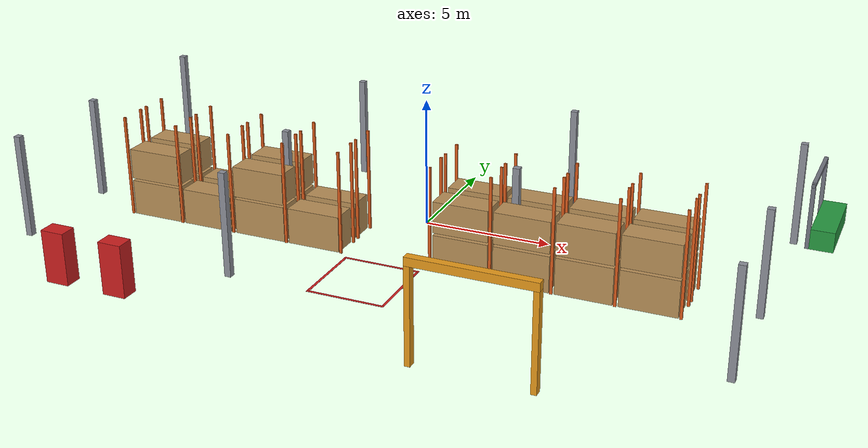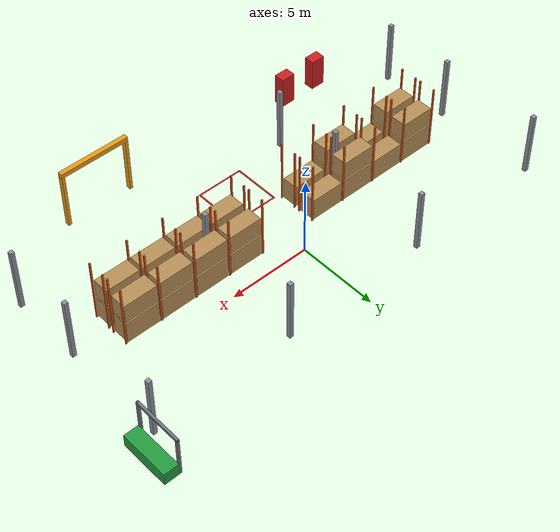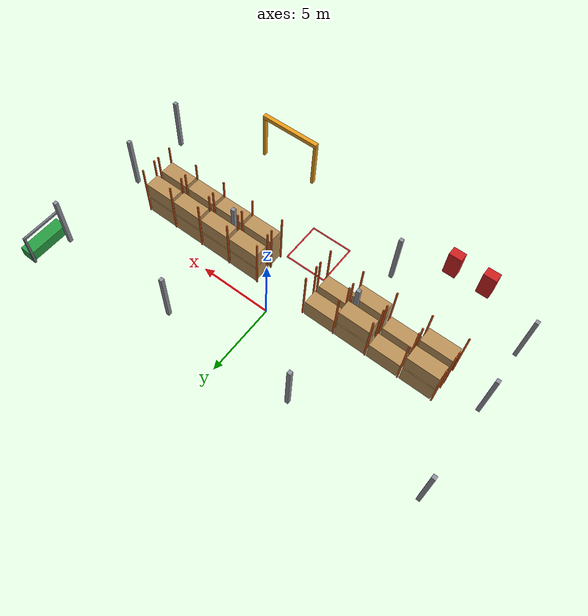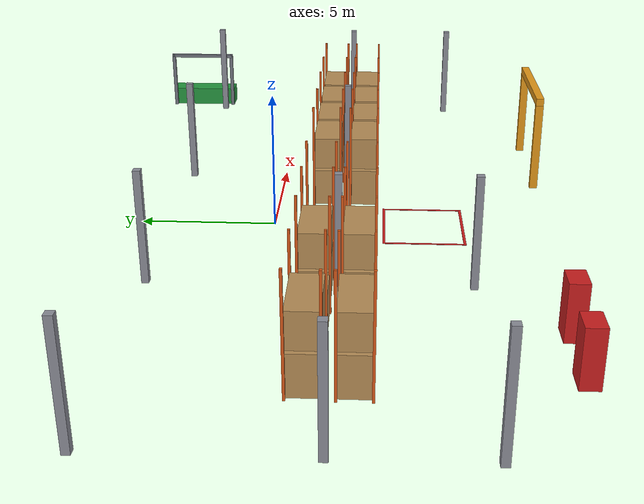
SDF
<sdf version="1.8">
 <world name="warehouse">
  <model name="DoorGap">
   <static>true</static>
   <pose>6.00 -10.10 0 0 0 0</pose>
   <link name="link">
    <collision name="post_west_collision">
     <pose>-2.100 0.000 1.750 0 0 0</pose>
     <geometry><box><size>0.200 0.300 3.500</size></box></geometry>
    </collision>
    <visual name="post_west_visual">
     <pose>-2.100 0.000 1.750 0 0 0</pose>
     <geometry><box><size>0.200 0.300 3.500</size></box></geometry>
     <material><ambient>0.90 0.60 0.10 1</ambient><diffuse>0.90 0.60 0.10 1</diffuse></material>
    </visual>
    <collision name="post_east_collision">
     <pose>2.100 0.000 1.750 0 0 0</pose>
     <geometry><box><size>0.200 0.300 3.500</size></box></geometry>
    </collision>
    <visual name="post_east_visual">
     <pose>2.100 0.000 1.750 0 0 0</pose>
     <geometry><box><size>0.200 0.300 3.500</size></box></geometry>
     <material><ambient>0.90 0.60 0.10 1</ambient><diffuse>0.90 0.60 0.10 1</diffuse></material>
    </visual>
    <collision name="lintel_collision">
     <pose>0.000 0.000 3.650 0 0 0</pose>
     <geometry><box><size>4.400 0.300 0.300</size></box></geometry>
    </collision>
    <visual name="lintel_visual">
     <pose>0.000 0.000 3.650 0 0 0</pose>
     <geometry><box><size>4.400 0.300 0.300</size></box></geometry>
     <material><ambient>0.90 0.60 0.10 1</ambient><diffuse>0.90 0.60 0.10 1</diffuse></material>
    </visual>
   </link>
  </model>
  <model name="RackRowC_West">
   <static>true</static>
   <link name="link">
    <collision name="cn_frame0_front_collision">
     <pose>-11.000 -1.340 2.000 0 0 0</pose>
     <geometry><box><size>0.100 0.080 4.000</size></box></geometry>
    </collision>
    <visual name="cn_frame0_front_visual">
     <pose>-11.000 -1.340 2.000 0 0 0</pose>
     <geometry><box><size>0.100 0.080 4.000</size></box></geometry>
     <material><ambient>0.85 0.35 0.10 1</ambient><diffuse>0.85 0.35 0.10 1</diffuse></material>
    </visual>
    <collision name="cn_frame0_rear_collision">
     <pose>-11.000 -2.360 2.000 0 0 0</pose>
     <geometry><box><size>0.100 0.080 4.000</size></box></geometry>
    </collision>
    <visual name="cn_frame0_rear_visual">
     <pose>-11.000 -2.360 2.000 0 0 0</pose>
     <geometry><box><size>0.100 0.080 4.000</size></box></geometry>
     <material><ambient>0.85 0.35 0.10 1</ambient><diffuse>0.85 0.35 0.10 1</diffuse></material>
    </visual>
    <collision name="cn_frame1_front_collision">
     <pose>-8.700 -1.340 2.000 0 0 0</pose>
     <geometry><box><size>0.100 0.080 4.000</size></box></geometry>
    </collision>
    <visual name="cn_frame1_front_visual">
     <pose>-8.700 -1.340 2.000 0 0 0</pose>
     <geometry><box><size>0.100 0.080 4.000</size></box></geometry>
     <material><ambient>0.85 0.35 0.10 1</ambient><diffuse>0.85 0.35 0.10 1</diffuse></material>
    </visual>
    <collision name="cn_frame1_rear_collision">
     <pose>-8.700 -2.360 2.000 0 0 0</pose>
     <geometry><box><size>0.100 0.080 4.000</size></box></geometry>
    </collision>
    <visual name="cn_frame1_rear_visual">
     <pose>-8.700 -2.360 2.000 0 0 0</pose>
     <geometry><box><size>0.100 0.080 4.000</size></box></geometry>
     <material><ambient>0.85 0.35 0.10 1</ambient><diffuse>0.85 0.35 0.10 1</diffuse></material>
    </visual>
    <collision name="cn_frame2_front_collision">
     <pose>-6.400 -1.340 2.000 0 0 0</pose>
     <geometry><box><size>0.100 0.080 4.000</size></box></geometry>
    </collision>
    <visual name="cn_frame2_front_visual">
     <pose>-6.400 -1.340 2.000 0 0 0</pose>
     <geometry><box><size>0.100 0.080 4.000</size></box></geometry>
     <material><ambient>0.85 0.35 0.10 1</ambient><diffuse>0.85 0.35 0.10 1</diffuse></material>
    </visual>
    <collision name="cn_frame2_rear_collision">
     <pose>-6.400 -2.360 2.000 0 0 0</pose>
     <geometry><box><size>0.100 0.080 4.000</size></box></geometry>
    </collision>
    <visual name="cn_frame2_rear_visual">
     <pose>-6.400 -2.360 2.000 0 0 0</pose>
     <geometry><box><size>0.100 0.080 4.000</size></box></geometry>
     <material><ambient>0.85 0.35 0.10 1</ambient><diffuse>0.85 0.35 0.10 1</diffuse></material>
    </visual>
    <collision name="cn_frame3_front_collision">
     <pose>-4.100 -1.340 2.000 0 0 0</pose>
     <geometry><box><size>0.100 0.080 4.000</size></box></geometry>
    </collision>
    <visual name="cn_frame3_front_visual">
     <pose>-4.100 -1.340 2.000 0 0 0</pose>
     <geometry><box><size>0.100 0.080 4.000</size></box></geometry>
     <material><ambient>0.85 0.35 0.10 1</ambient><diffuse>0.85 0.35 0.10 1</diffuse></material>
    </visual>
    <collision name="cn_frame3_rear_collision">
     <pose>-4.100 -2.360 2.000 0 0 0</pose>
     <geometry><box><size>0.100 0.080 4.000</size></box></geometry>
    </collision>
    <visual name="cn_frame3_rear_visual">
     <pose>-4.100 -2.360 2.000 0 0 0</pose>
     <geometry><box><size>0.100 0.080 4.000</size></box></geometry>
     <material><ambient>0.85 0.35 0.10 1</ambient><diffuse>0.85 0.35 0.10 1</diffuse></material>
    </visual>
    <collision name="cn_frame4_front_collision">
     <pose>-1.800 -1.340 2.000 0 0 0</pose>
     <geometry><box><size>0.100 0.080 4.000</size></box></geometry>
    </collision>
    <visual name="cn_frame4_front_visual">
     <pose>-1.800 -1.340 2.000 0 0 0</pose>
     <geometry><box><size>0.100 0.080 4.000</size></box></geometry>
     <material><ambient>0.85 0.35 0.10 1</ambient><diffuse>0.85 0.35 0.10 1</diffuse></material>
    </visual>
    <collision name="cn_frame4_rear_collision">
     <pose>-1.800 -2.360 2.000 0 0 0</pose>
     <geometry><box><size>0.100 0.080 4.000</size></box></geometry>
    </collision>
    <visual name="cn_frame4_rear_visual">
     <pose>-1.800 -2.360 2.000 0 0 0</pose>
     <geometry><box><size>0.100 0.080 4.000</size></box></geometry>
     <material><ambient>0.85 0.35 0.10 1</ambient><diffuse>0.85 0.35 0.10 1</diffuse></material>
    </visual>
    <collision name="cn_bay0_level1_collision">
     <pose>-9.850 -1.850 0.700 0 0 0</pose>
     <geometry><box><size>2.100 1.000 1.400</size></box></geometry>
    </collision>
    <visual name="cn_bay0_level1_visual">
     <pose>-9.850 -1.850 0.700 0 0 0</pose>
     <geometry><box><size>2.100 1.000 1.400</size></box></geometry>
     <material><ambient>0.72 0.56 0.34 1</ambient><diffuse>0.72 0.56 0.34 1</diffuse></material>
    </visual>
    <collision name="cn_bay0_level2_collision">
     <pose>-9.850 -1.850 2.100 0 0 0</pose>
     <geometry><box><size>2.100 1.000 1.200</size></box></geometry>
    </collision>
    <visual name="cn_bay0_level2_visual">
     <pose>-9.850 -1.850 2.100 0 0 0</pose>
     <geometry><box><size>2.100 1.000 1.200</size></box></geometry>
     <material><ambient>0.72 0.56 0.34 1</ambient><diffuse>0.72 0.56 0.34 1</diffuse></material>
    </visual>
    <collision name="cn_bay1_level1_collision">
     <pose>-7.550 -1.850 0.700 0 0 0</pose>
     <geometry><box><size>2.100 1.000 1.400</size></box></geometry>
    </collision>
    <visual name="cn_bay1_level1_visual">
     <pose>-7.550 -1.850 0.700 0 0 0</pose>
     <geometry><box><size>2.100 1.000 1.400</size></box></geometry>
     <material><ambient>0.72 0.56 0.34 1</ambient><diffuse>0.72 0.56 0.34 1</diffuse></material>
    </visual>
    <collision name="cn_bay2_level1_collision">
     <pose>-5.250 -1.850 0.700 0 0 0</pose>
     <geometry><box><size>2.100 1.000 1.400</size></box></geometry>
    </collision>
    <visual name="cn_bay2_level1_visual">
     <pose>-5.250 -1.850 0.700 0 0 0</pose>
     <geometry><box><size>2.100 1.000 1.400</size></box></geometry>
     <material><ambient>0.72 0.56 0.34 1</ambient><diffuse>0.72 0.56 0.34 1</diffuse></material>
    </visual>
    <collision name="cn_bay2_level2_collision">
     <pose>-5.250 -1.850 2.100 0 0 0</pose>
     <geometry><box><size>2.100 1.000 1.200</size></box></geometry>
    </collision>
    <visual name="cn_bay2_level2_visual">
     <pose>-5.250 -1.850 2.100 0 0 0</pose>
     <geometry><box><size>2.100 1.000 1.200</size></box></geometry>
     <material><ambient>0.72 0.56 0.34 1</ambient><diffuse>0.72 0.56 0.34 1</diffuse></material>
    </visual>
    <collision name="cn_bay3_level1_collision">
     <pose>-2.950 -1.850 0.700 0 0 0</pose>
     <geometry><box><size>2.100 1.000 1.400</size></box></geometry>
    </collision>
    <visual name="cn_bay3_level1_visual">
     <pose>-2.950 -1.850 0.700 0 0 0</pose>
     <geometry><box><size>2.100 1.000 1.400</size></box></geometry>
     <material><ambient>0.72 0.56 0.34 1</ambient><diffuse>0.72 0.56 0.34 1</diffuse></material>
    </visual>
    <collision name="cs_frame0_front_collision">
     <pose>-11.000 -3.760 2.000 0 0 0</pose>
     <geometry><box><size>0.100 0.080 4.000</size></box></geometry>
    </collision>
    <visual name="cs_frame0_front_visual">
     <pose>-11.000 -3.760 2.000 0 0 0</pose>
     <geometry><box><size>0.100 0.080 4.000</size></box></geometry>
     <material><ambient>0.85 0.35 0.10 1</ambient><diffuse>0.85 0.35 0.10 1</diffuse></material>
    </visual>
    <collision name="cs_frame0_rear_collision">
     <pose>-11.000 -2.740 2.000 0 0 0</pose>
     <geometry><box><size>0.100 0.080 4.000</size></box></geometry>
    </collision>
    <visual name="cs_frame0_rear_visual">
     <pose>-11.000 -2.740 2.000 0 0 0</pose>
     <geometry><box><size>0.100 0.080 4.000</size></box></geometry>
     <material><ambient>0.85 0.35 0.10 1</ambient><diffuse>0.85 0.35 0.10 1</diffuse></material>
    </visual>
    <collision name="cs_frame1_front_collision">
     <pose>-8.700 -3.760 2.000 0 0 0</pose>
     <geometry><box><size>0.100 0.080 4.000</size></box></geometry>
    </collision>
    <visual name="cs_frame1_front_visual">
     <pose>-8.700 -3.760 2.000 0 0 0</pose>
     <geometry><box><size>0.100 0.080 4.000</size></box></geometry>
     <material><ambient>0.85 0.35 0.10 1</ambient><diffuse>0.85 0.35 0.10 1</diffuse></material>
    </visual>
    <collision name="cs_frame1_rear_collision">
     <pose>-8.700 -2.740 2.000 0 0 0</pose>
     <geometry><box><size>0.100 0.080 4.000</size></box></geometry>
    </collision>
    <visual name="cs_frame1_rear_visual">
     <pose>-8.700 -2.740 2.000 0 0 0</pose>
     <geometry><box><size>0.100 0.080 4.000</size></box></geometry>
     <material><ambient>0.85 0.35 0.10 1</ambient><diffuse>0.85 0.35 0.10 1</diffuse></material>
    </visual>
    <collision name="cs_frame2_front_collision">
     <pose>-6.400 -3.760 2.000 0 0 0</pose>
     <geometry><box><size>0.100 0.080 4.000</size></box></geometry>
    </collision>
    <visual name="cs_frame2_front_visual">
     <pose>-6.400 -3.760 2.000 0 0 0</pose>
     <geometry><box><size>0.100 0.080 4.000</size></box></geometry>
     <material><ambient>0.85 0.35 0.10 1</ambient><diffuse>0.85 0.35 0.10 1</diffuse></material>
    </visual>
    <collision name="cs_frame2_rear_collision">
     <pose>-6.400 -2.740 2.000 0 0 0</pose>
     <geometry><box><size>0.100 0.080 4.000</size></box></geometry>
    </collision>
    <visual name="cs_frame2_rear_visual">
     <pose>-6.400 -2.740 2.000 0 0 0</pose>
     <geometry><box><size>0.100 0.080 4.000</size></box></geometry>
     <material><ambient>0.85 0.35 0.10 1</ambient><diffuse>0.85 0.35 0.10 1</diffuse></material>
    </visual>
    <collision name="cs_frame3_front_collision">
     <pose>-4.100 -3.760 2.000 0 0 0</pose>
     <geometry><box><size>0.100 0.080 4.000</size></box></geometry>
    </collision>
    <visual name="cs_frame3_front_visual">
     <pose>-4.100 -3.760 2.000 0 0 0</pose>
     <geometry><box><size>0.100 0.080 4.000</size></box></geometry>
     <material><ambient>0.85 0.35 0.10 1</ambient><diffuse>0.85 0.35 0.10 1</diffuse></material>
    </visual>
    <collision name="cs_frame3_rear_collision">
     <pose>-4.100 -2.740 2.000 0 0 0</pose>
     <geometry><box><size>0.100 0.080 4.000</size></box></geometry>
    </collision>
    <visual name="cs_frame3_rear_visual">
     <pose>-4.100 -2.740 2.000 0 0 0</pose>
     <geometry><box><size>0.100 0.080 4.000</size></box></geometry>
     <material><ambient>0.85 0.35 0.10 1</ambient><diffuse>0.85 0.35 0.10 1</diffuse></material>
    </visual>
    <collision name="cs_frame4_front_collision">
     <pose>-1.800 -3.760 2.000 0 0 0</pose>
     <geometry><box><size>0.100 0.080 4.000</size></box></geometry>
    </collision>
    <visual name="cs_frame4_front_visual">
     <pose>-1.800 -3.760 2.000 0 0 0</pose>
     <geometry><box><size>0.100 0.080 4.000</size></box></geometry>
     <material><ambient>0.85 0.35 0.10 1</ambient><diffuse>0.85 0.35 0.10 1</diffuse></material>
    </visual>
    <collision name="cs_frame4_rear_collision">
     <pose>-1.800 -2.740 2.000 0 0 0</pose>
     <geometry><box><size>0.100 0.080 4.000</size></box></geometry>
    </collision>
    <visual name="cs_frame4_rear_visual">
     <pose>-1.800 -2.740 2.000 0 0 0</pose>
     <geometry><box><size>0.100 0.080 4.000</size></box></geometry>
     <material><ambient>0.85 0.35 0.10 1</ambient><diffuse>0.85 0.35 0.10 1</diffuse></material>
    </visual>
    <collision name="cs_bay0_level1_collision">
     <pose>-9.850 -3.250 0.700 0 0 0</pose>
     <geometry><box><size>2.100 1.000 1.400</size></box></geometry>
    </collision>
    <visual name="cs_bay0_level1_visual">
     <pose>-9.850 -3.250 0.700 0 0 0</pose>
     <geometry><box><size>2.100 1.000 1.400</size></box></geometry>
     <material><ambient>0.72 0.56 0.34 1</ambient><diffuse>0.72 0.56 0.34 1</diffuse></material>
    </visual>
    <collision name="cs_bay0_level2_collision">
     <pose>-9.850 -3.250 2.100 0 0 0</pose>
     <geometry><box><size>2.100 1.000 1.200</size></box></geometry>
    </collision>
    <visual name="cs_bay0_level2_visual">
     <pose>-9.850 -3.250 2.100 0 0 0</pose>
     <geometry><box><size>2.100 1.000 1.200</size></box></geometry>
     <material><ambient>0.72 0.56 0.34 1</ambient><diffuse>0.72 0.56 0.34 1</diffuse></material>
    </visual>
    <collision name="cs_bay1_level1_collision">
     <pose>-7.550 -3.250 0.700 0 0 0</pose>
     <geometry><box><size>2.100 1.000 1.400</size></box></geometry>
    </collision>
    <visual name="cs_bay1_level1_visual">
     <pose>-7.550 -3.250 0.700 0 0 0</pose>
     <geometry><box><size>2.100 1.000 1.400</size></box></geometry>
     <material><ambient>0.72 0.56 0.34 1</ambient><diffuse>0.72 0.56 0.34 1</diffuse></material>
    </visual>
    <collision name="cs_bay2_level1_collision">
     <pose>-5.250 -3.250 0.700 0 0 0</pose>
     <geometry><box><size>2.100 1.000 1.400</size></box></geometry>
    </collision>
    <visual name="cs_bay2_level1_visual">
     <pose>-5.250 -3.250 0.700 0 0 0</pose>
     <geometry><box><size>2.100 1.000 1.400</size></box></geometry>
     <material><ambient>0.72 0.56 0.34 1</ambient><diffuse>0.72 0.56 0.34 1</diffuse></material>
    </visual>
    <collision name="cs_bay2_level2_collision">
     <pose>-5.250 -3.250 2.100 0 0 0</pose>
     <geometry><box><size>2.100 1.000 1.200</size></box></geometry>
    </collision>
    <visual name="cs_bay2_level2_visual">
     <pose>-5.250 -3.250 2.100 0 0 0</pose>
     <geometry><box><size>2.100 1.000 1.200</size></box></geometry>
     <material><ambient>0.72 0.56 0.34 1</ambient><diffuse>0.72 0.56 0.34 1</diffuse></material>
    </visual>
    <collision name="cs_bay3_level1_collision">
     <pose>-2.950 -3.250 0.700 0 0 0</pose>
     <geometry><box><size>2.100 1.000 1.400</size></box></geometry>
    </collision>
    <visual name="cs_bay3_level1_visual">
     <pose>-2.950 -3.250 0.700 0 0 0</pose>
     <geometry><box><size>2.100 1.000 1.400</size></box></geometry>
     <material><ambient>0.72 0.56 0.34 1</ambient><diffuse>0.72 0.56 0.34 1</diffuse></material>
    </visual>
   </link>
  </model>
  <model name="RackRowC_East">
   <static>true</static>
   <link name="link">
    <collision name="cn_frame0_front_collision">
     <pose>1.800 -1.340 2.000 0 0 0</pose>
     <geometry><box><size>0.100 0.080 4.000</size></box></geometry>
    </collision>
    <visual name="cn_frame0_front_visual">
     <pose>1.800 -1.340 2.000 0 0 0</pose>
     <geometry><box><size>0.100 0.080 4.000</size></box></geometry>
     <material><ambient>0.85 0.35 0.10 1</ambient><diffuse>0.85 0.35 0.10 1</diffuse></material>
    </visual>
    <collision name="cn_frame0_rear_collision">
     <pose>1.800 -2.360 2.000 0 0 0</pose>
     <geometry><box><size>0.100 0.080 4.000</size></box></geometry>
    </collision>
    <visual name="cn_frame0_rear_visual">
     <pose>1.800 -2.360 2.000 0 0 0</pose>
     <geometry><box><size>0.100 0.080 4.000</size></box></geometry>
     <material><ambient>0.85 0.35 0.10 1</ambient><diffuse>0.85 0.35 0.10 1</diffuse></material>
    </visual>
    <collision name="cn_frame1_front_collision">
     <pose>4.100 -1.340 2.000 0 0 0</pose>
     <geometry><box><size>0.100 0.080 4.000</size></box></geometry>
    </collision>
    <visual name="cn_frame1_front_visual">
     <pose>4.100 -1.340 2.000 0 0 0</pose>
     <geometry><box><size>0.100 0.080 4.000</size></box></geometry>
     <material><ambient>0.85 0.35 0.10 1</ambient><diffuse>0.85 0.35 0.10 1</diffuse></material>
    </visual>
    <collision name="cn_frame1_rear_collision">
     <pose>4.100 -2.360 2.000 0 0 0</pose>
     <geometry><box><size>0.100 0.080 4.000</size></box></geometry>
    </collision>
    <visual name="cn_frame1_rear_visual">
     <pose>4.100 -2.360 2.000 0 0 0</pose>
     <geometry><box><size>0.100 0.080 4.000</size></box></geometry>
     <material><ambient>0.85 0.35 0.10 1</ambient><diffuse>0.85 0.35 0.10 1</diffuse></material>
    </visual>
    <collision name="cn_frame2_front_collision">
     <pose>6.400 -1.340 2.000 0 0 0</pose>
     <geometry><box><size>0.100 0.080 4.000</size></box></geometry>
    </collision>
    <visual name="cn_frame2_front_visual">
     <pose>6.400 -1.340 2.000 0 0 0</pose>
     <geometry><box><size>0.100 0.080 4.000</size></box></geometry>
     <material><ambient>0.85 0.35 0.10 1</ambient><diffuse>0.85 0.35 0.10 1</diffuse></material>
    </visual>
    <collision name="cn_frame2_rear_collision">
     <pose>6.400 -2.360 2.000 0 0 0</pose>
     <geometry><box><size>0.100 0.080 4.000</size></box></geometry>
    </collision>
    <visual name="cn_frame2_rear_visual">
     <pose>6.400 -2.360 2.000 0 0 0</pose>
     <geometry><box><size>0.100 0.080 4.000</size></box></geometry>
     <material><ambient>0.85 0.35 0.10 1</ambient><diffuse>0.85 0.35 0.10 1</diffuse></material>
    </visual>
    <collision name="cn_frame3_front_collision">
     <pose>8.700 -1.340 2.000 0 0 0</pose>
     <geometry><box><size>0.100 0.080 4.000</size></box></geometry>
    </collision>
    <visual name="cn_frame3_front_visual">
     <pose>8.700 -1.340 2.000 0 0 0</pose>
     <geometry><box><size>0.100 0.080 4.000</size></box></geometry>
     <material><ambient>0.85 0.35 0.10 1</ambient><diffuse>0.85 0.35 0.10 1</diffuse></material>
    </visual>
    <collision name="cn_frame3_rear_collision">
     <pose>8.700 -2.360 2.000 0 0 0</pose>
     <geometry><box><size>0.100 0.080 4.000</size></box></geometry>
    </collision>
    <visual name="cn_frame3_rear_visual">
     <pose>8.700 -2.360 2.000 0 0 0</pose>
     <geometry><box><size>0.100 0.080 4.000</size></box></geometry>
     <material><ambient>0.85 0.35 0.10 1</ambient><diffuse>0.85 0.35 0.10 1</diffuse></material>
    </visual>
    <collision name="cn_frame4_front_collision">
     <pose>11.000 -1.340 2.000 0 0 0</pose>
     <geometry><box><size>0.100 0.080 4.000</size></box></geometry>
    </collision>
    <visual name="cn_frame4_front_visual">
     <pose>11.000 -1.340 2.000 0 0 0</pose>
     <geometry><box><size>0.100 0.080 4.000</size></box></geometry>
     <material><ambient>0.85 0.35 0.10 1</ambient><diffuse>0.85 0.35 0.10 1</diffuse></material>
    </visual>
    <collision name="cn_frame4_rear_collision">
     <pose>11.000 -2.360 2.000 0 0 0</pose>
     <geometry><box><size>0.100 0.080 4.000</size></box></geometry>
    </collision>
    <visual name="cn_frame4_rear_visual">
     <pose>11.000 -2.360 2.000 0 0 0</pose>
     <geometry><box><size>0.100 0.080 4.000</size></box></geometry>
     <material><ambient>0.85 0.35 0.10 1</ambient><diffuse>0.85 0.35 0.10 1</diffuse></material>
    </visual>
    <collision name="cn_bay0_level1_collision">
     <pose>2.950 -1.850 0.700 0 0 0</pose>
     <geometry><box><size>2.100 1.000 1.400</size></box></geometry>
    </collision>
    <visual name="cn_bay0_level1_visual">
     <pose>2.950 -1.850 0.700 0 0 0</pose>
     <geometry><box><size>2.100 1.000 1.400</size></box></geometry>
     <material><ambient>0.72 0.56 0.34 1</ambient><diffuse>0.72 0.56 0.34 1</diffuse></material>
    </visual>
    <collision name="cn_bay0_level2_collision">
     <pose>2.950 -1.850 2.100 0 0 0</pose>
     <geometry><box><size>2.100 1.000 1.200</size></box></geometry>
    </collision>
    <visual name="cn_bay0_level2_visual">
     <pose>2.950 -1.850 2.100 0 0 0</pose>
     <geometry><box><size>2.100 1.000 1.200</size></box></geometry>
     <material><ambient>0.72 0.56 0.34 1</ambient><diffuse>0.72 0.56 0.34 1</diffuse></material>
    </visual>
    <collision name="cn_bay1_level1_collision">
     <pose>5.250 -1.850 0.700 0 0 0</pose>
     <geometry><box><size>2.100 1.000 1.400</size></box></geometry>
    </collision>
    <visual name="cn_bay1_level1_visual">
     <pose>5.250 -1.850 0.700 0 0 0</pose>
     <geometry><box><size>2.100 1.000 1.400</size></box></geometry>
     <material><ambient>0.72 0.56 0.34 1</ambient><diffuse>0.72 0.56 0.34 1</diffuse></material>
    </visual>
    <collision name="cn_bay1_level2_collision">
     <pose>5.250 -1.850 2.100 0 0 0</pose>
     <geometry><box><size>2.100 1.000 1.200</size></box></geometry>
    </collision>
    <visual name="cn_bay1_level2_visual">
     <pose>5.250 -1.850 2.100 0 0 0</pose>
     <geometry><box><size>2.100 1.000 1.200</size></box></geometry>
     <material><ambient>0.72 0.56 0.34 1</ambient><diffuse>0.72 0.56 0.34 1</diffuse></material>
    </visual>
    <collision name="cn_bay2_level1_collision">
     <pose>7.550 -1.850 0.700 0 0 0</pose>
     <geometry><box><size>2.100 1.000 1.400</size></box></geometry>
    </collision>
    <visual name="cn_bay2_level1_visual">
     <pose>7.550 -1.850 0.700 0 0 0</pose>
     <geometry><box><size>2.100 1.000 1.400</size></box></geometry>
     <material><ambient>0.72 0.56 0.34 1</ambient><diffuse>0.72 0.56 0.34 1</diffuse></material>
    </visual>
    <collision name="cn_bay2_level2_collision">
     <pose>7.550 -1.850 2.100 0 0 0</pose>
     <geometry><box><size>2.100 1.000 1.200</size></box></geometry>
    </collision>
    <visual name="cn_bay2_level2_visual">
     <pose>7.550 -1.850 2.100 0 0 0</pose>
     <geometry><box><size>2.100 1.000 1.200</size></box></geometry>
     <material><ambient>0.72 0.56 0.34 1</ambient><diffuse>0.72 0.56 0.34 1</diffuse></material>
    </visual>
    <collision name="cn_bay3_level1_collision">
     <pose>9.850 -1.850 0.700 0 0 0</pose>
     <geometry><box><size>2.100 1.000 1.400</size></box></geometry>
    </collision>
    <visual name="cn_bay3_level1_visual">
     <pose>9.850 -1.850 0.700 0 0 0</pose>
     <geometry><box><size>2.100 1.000 1.400</size></box></geometry>
     <material><ambient>0.72 0.56 0.34 1</ambient><diffuse>0.72 0.56 0.34 1</diffuse></material>
    </visual>
    <collision name="cn_bay3_level2_collision">
     <pose>9.850 -1.850 2.100 0 0 0</pose>
     <geometry><box><size>2.100 1.000 1.200</size></box></geometry>
    </collision>
    <visual name="cn_bay3_level2_visual">
     <pose>9.850 -1.850 2.100 0 0 0</pose>
     <geometry><box><size>2.100 1.000 1.200</size></box></geometry>
     <material><ambient>0.72 0.56 0.34 1</ambient><diffuse>0.72 0.56 0.34 1</diffuse></material>
    </visual>
    <collision name="cs_frame0_front_collision">
     <pose>1.800 -3.760 2.000 0 0 0</pose>
     <geometry><box><size>0.100 0.080 4.000</size></box></geometry>
    </collision>
    <visual name="cs_frame0_front_visual">
     <pose>1.800 -3.760 2.000 0 0 0</pose>
     <geometry><box><size>0.100 0.080 4.000</size></box></geometry>
     <material><ambient>0.85 0.35 0.10 1</ambient><diffuse>0.85 0.35 0.10 1</diffuse></material>
    </visual>
    <collision name="cs_frame0_rear_collision">
     <pose>1.800 -2.740 2.000 0 0 0</pose>
     <geometry><box><size>0.100 0.080 4.000</size></box></geometry>
    </collision>
    <visual name="cs_frame0_rear_visual">
     <pose>1.800 -2.740 2.000 0 0 0</pose>
     <geometry><box><size>0.100 0.080 4.000</size></box></geometry>
     <material><ambient>0.85 0.35 0.10 1</ambient><diffuse>0.85 0.35 0.10 1</diffuse></material>
    </visual>
    <collision name="cs_frame1_front_collision">
     <pose>4.100 -3.760 2.000 0 0 0</pose>
     <geometry><box><size>0.100 0.080 4.000</size></box></geometry>
    </collision>
    <visual name="cs_frame1_front_visual">
     <pose>4.100 -3.760 2.000 0 0 0</pose>
     <geometry><box><size>0.100 0.080 4.000</size></box></geometry>
     <material><ambient>0.85 0.35 0.10 1</ambient><diffuse>0.85 0.35 0.10 1</diffuse></material>
    </visual>
    <collision name="cs_frame1_rear_collision">
     <pose>4.100 -2.740 2.000 0 0 0</pose>
     <geometry><box><size>0.100 0.080 4.000</size></box></geometry>
    </collision>
    <visual name="cs_frame1_rear_visual">
     <pose>4.100 -2.740 2.000 0 0 0</pose>
     <geometry><box><size>0.100 0.080 4.000</size></box></geometry>
     <material><ambient>0.85 0.35 0.10 1</ambient><diffuse>0.85 0.35 0.10 1</diffuse></material>
    </visual>
    <collision name="cs_frame2_front_collision">
     <pose>6.400 -3.760 2.000 0 0 0</pose>
     <geometry><box><size>0.100 0.080 4.000</size></box></geometry>
    </collision>
    <visual name="cs_frame2_front_visual">
     <pose>6.400 -3.760 2.000 0 0 0</pose>
     <geometry><box><size>0.100 0.080 4.000</size></box></geometry>
     <material><ambient>0.85 0.35 0.10 1</ambient><diffuse>0.85 0.35 0.10 1</diffuse></material>
    </visual>
    <collision name="cs_frame2_rear_collision">
     <pose>6.400 -2.740 2.000 0 0 0</pose>
     <geometry><box><size>0.100 0.080 4.000</size></box></geometry>
    </collision>
    <visual name="cs_frame2_rear_visual">
     <pose>6.400 -2.740 2.000 0 0 0</pose>
     <geometry><box><size>0.100 0.080 4.000</size></box></geometry>
     <material><ambient>0.85 0.35 0.10 1</ambient><diffuse>0.85 0.35 0.10 1</diffuse></material>
    </visual>
    <collision name="cs_frame3_front_collision">
     <pose>8.700 -3.760 2.000 0 0 0</pose>
     <geometry><box><size>0.100 0.080 4.000</size></box></geometry>
    </collision>
    <visual name="cs_frame3_front_visual">
     <pose>8.700 -3.760 2.000 0 0 0</pose>
     <geometry><box><size>0.100 0.080 4.000</size></box></geometry>
     <material><ambient>0.85 0.35 0.10 1</ambient><diffuse>0.85 0.35 0.10 1</diffuse></material>
    </visual>
    <collision name="cs_frame3_rear_collision">
     <pose>8.700 -2.740 2.000 0 0 0</pose>
     <geometry><box><size>0.100 0.080 4.000</size></box></geometry>
    </collision>
    <visual name="cs_frame3_rear_visual">
     <pose>8.700 -2.740 2.000 0 0 0</pose>
     <geometry><box><size>0.100 0.080 4.000</size></box></geometry>
     <material><ambient>0.85 0.35 0.10 1</ambient><diffuse>0.85 0.35 0.10 1</diffuse></material>
    </visual>
    <collision name="cs_frame4_front_collision">
     <pose>11.000 -3.760 2.000 0 0 0</pose>
     <geometry><box><size>0.100 0.080 4.000</size></box></geometry>
    </collision>
    <visual name="cs_frame4_front_visual">
     <pose>11.000 -3.760 2.000 0 0 0</pose>
     <geometry><box><size>0.100 0.080 4.000</size></box></geometry>
     <material><ambient>0.85 0.35 0.10 1</ambient><diffuse>0.85 0.35 0.10 1</diffuse></material>
    </visual>
    <collision name="cs_frame4_rear_collision">
     <pose>11.000 -2.740 2.000 0 0 0</pose>
     <geometry><box><size>0.100 0.080 4.000</size></box></geometry>
    </collision>
    <visual name="cs_frame4_rear_visual">
     <pose>11.000 -2.740 2.000 0 0 0</pose>
     <geometry><box><size>0.100 0.080 4.000</size></box></geometry>
     <material><ambient>0.85 0.35 0.10 1</ambient><diffuse>0.85 0.35 0.10 1</diffuse></material>
    </visual>
    <collision name="cs_bay0_level1_collision">
     <pose>2.950 -3.250 0.700 0 0 0</pose>
     <geometry><box><size>2.100 1.000 1.400</size></box></geometry>
    </collision>
    <visual name="cs_bay0_level1_visual">
     <pose>2.950 -3.250 0.700 0 0 0</pose>
     <geometry><box><size>2.100 1.000 1.400</size></box></geometry>
     <material><ambient>0.72 0.56 0.34 1</ambient><diffuse>0.72 0.56 0.34 1</diffuse></material>
    </visual>
    <collision name="cs_bay0_level2_collision">
     <pose>2.950 -3.250 2.100 0 0 0</pose>
     <geometry><box><size>2.100 1.000 1.200</size></box></geometry>
    </collision>
    <visual name="cs_bay0_level2_visual">
     <pose>2.950 -3.250 2.100 0 0 0</pose>
     <geometry><box><size>2.100 1.000 1.200</size></box></geometry>
     <material><ambient>0.72 0.56 0.34 1</ambient><diffuse>0.72 0.56 0.34 1</diffuse></material>
    </visual>
    <collision name="cs_bay1_level1_collision">
     <pose>5.250 -3.250 0.700 0 0 0</pose>
     <geometry><box><size>2.100 1.000 1.400</size></box></geometry>
    </collision>
    <visual name="cs_bay1_level1_visual">
     <pose>5.250 -3.250 0.700 0 0 0</pose>
     <geometry><box><size>2.100 1.000 1.400</size></box></geometry>
     <material><ambient>0.72 0.56 0.34 1</ambient><diffuse>0.72 0.56 0.34 1</diffuse></material>
    </visual>
    <collision name="cs_bay1_level2_collision">
     <pose>5.250 -3.250 2.100 0 0 0</pose>
     <geometry><box><size>2.100 1.000 1.200</size></box></geometry>
    </collision>
    <visual name="cs_bay1_level2_visual">
     <pose>5.250 -3.250 2.100 0 0 0</pose>
     <geometry><box><size>2.100 1.000 1.200</size></box></geometry>
     <material><ambient>0.72 0.56 0.34 1</ambient><diffuse>0.72 0.56 0.34 1</diffuse></material>
    </visual>
    <collision name="cs_bay2_level1_collision">
     <pose>7.550 -3.250 0.700 0 0 0</pose>
     <geometry><box><size>2.100 1.000 1.400</size></box></geometry>
    </collision>
    <visual name="cs_bay2_level1_visual">
     <pose>7.550 -3.250 0.700 0 0 0</pose>
     <geometry><box><size>2.100 1.000 1.400</size></box></geometry>
     <material><ambient>0.72 0.56 0.34 1</ambient><diffuse>0.72 0.56 0.34 1</diffuse></material>
    </visual>
    <collision name="cs_bay2_level2_collision">
     <pose>7.550 -3.250 2.100 0 0 0</pose>
     <geometry><box><size>2.100 1.000 1.200</size></box></geometry>
    </collision>
    <visual name="cs_bay2_level2_visual">
     <pose>7.550 -3.250 2.100 0 0 0</pose>
     <geometry><box><size>2.100 1.000 1.200</size></box></geometry>
     <material><ambient>0.72 0.56 0.34 1</ambient><diffuse>0.72 0.56 0.34 1</diffuse></material>
    </visual>
    <collision name="cs_bay3_level1_collision">
     <pose>9.850 -3.250 0.700 0 0 0</pose>
     <geometry><box><size>2.100 1.000 1.400</size></box></geometry>
    </collision>
    <visual name="cs_bay3_level1_visual">
     <pose>9.850 -3.250 0.700 0 0 0</pose>
     <geometry><box><size>2.100 1.000 1.400</size></box></geometry>
     <material><ambient>0.72 0.56 0.34 1</ambient><diffuse>0.72 0.56 0.34 1</diffuse></material>
    </visual>
    <collision name="cs_bay3_level2_collision">
     <pose>9.850 -3.250 2.100 0 0 0</pose>
     <geometry><box><size>2.100 1.000 1.200</size></box></geometry>
    </collision>
    <visual name="cs_bay3_level2_visual">
     <pose>9.850 -3.250 2.100 0 0 0</pose>
     <geometry><box><size>2.100 1.000 1.200</size></box></geometry>
     <material><ambient>0.72 0.56 0.34 1</ambient><diffuse>0.72 0.56 0.34 1</diffuse></material>
    </visual>
   </link>
  </model>
  <model name="BuildingColumns">
   <static>true</static>
   <link name="link">
    <collision name="column_rowB_flue_m13p4_collision">
     <pose>-13.400 3.850 2.000 0 0 0</pose>
     <geometry><box><size>0.250 0.250 4.000</size></box></geometry>
    </collision>
    <visual name="column_rowB_flue_m13p4_visual">
     <pose>-13.400 3.850 2.000 0 0 0</pose>
     <geometry><box><size>0.250 0.250 4.000</size></box></geometry>
     <material><ambient>0.55 0.56 0.60 1</ambient><diffuse>0.55 0.56 0.60 1</diffuse></material>
    </visual>
    <collision name="column_rowB_flue_m4p6_collision">
     <pose>-4.600 3.850 2.000 0 0 0</pose>
     <geometry><box><size>0.250 0.250 4.000</size></box></geometry>
    </collision>
    <visual name="column_rowB_flue_m4p6_visual">
     <pose>-4.600 3.850 2.000 0 0 0</pose>
     <geometry><box><size>0.250 0.250 4.000</size></box></geometry>
     <material><ambient>0.55 0.56 0.60 1</ambient><diffuse>0.55 0.56 0.60 1</diffuse></material>
    </visual>
    <collision name="column_rowB_flue_4p6_collision">
     <pose>4.600 3.850 2.000 0 0 0</pose>
     <geometry><box><size>0.250 0.250 4.000</size></box></geometry>
    </collision>
    <visual name="column_rowB_flue_4p6_visual">
     <pose>4.600 3.850 2.000 0 0 0</pose>
     <geometry><box><size>0.250 0.250 4.000</size></box></geometry>
     <material><ambient>0.55 0.56 0.60 1</ambient><diffuse>0.55 0.56 0.60 1</diffuse></material>
    </visual>
    <collision name="column_rowB_flue_13p4_collision">
     <pose>13.400 3.850 2.000 0 0 0</pose>
     <geometry><box><size>0.250 0.250 4.000</size></box></geometry>
    </collision>
    <visual name="column_rowB_flue_13p4_visual">
     <pose>13.400 3.850 2.000 0 0 0</pose>
     <geometry><box><size>0.250 0.250 4.000</size></box></geometry>
     <material><ambient>0.55 0.56 0.60 1</ambient><diffuse>0.55 0.56 0.60 1</diffuse></material>
    </visual>
    <collision name="column_rowC_flue_m13p4_collision">
     <pose>-13.400 -2.550 2.000 0 0 0</pose>
     <geometry><box><size>0.250 0.250 4.000</size></box></geometry>
    </collision>
    <visual name="column_rowC_flue_m13p4_visual">
     <pose>-13.400 -2.550 2.000 0 0 0</pose>
     <geometry><box><size>0.250 0.250 4.000</size></box></geometry>
     <material><ambient>0.55 0.56 0.60 1</ambient><diffuse>0.55 0.56 0.60 1</diffuse></material>
    </visual>
    <collision name="column_rowC_flue_m4p6_collision">
     <pose>-4.600 -2.550 2.000 0 0 0</pose>
     <geometry><box><size>0.250 0.250 4.000</size></box></geometry>
    </collision>
    <visual name="column_rowC_flue_m4p6_visual">
     <pose>-4.600 -2.550 2.000 0 0 0</pose>
     <geometry><box><size>0.250 0.250 4.000</size></box></geometry>
     <material><ambient>0.55 0.56 0.60 1</ambient><diffuse>0.55 0.56 0.60 1</diffuse></material>
    </visual>
    <collision name="column_rowC_flue_4p6_collision">
     <pose>4.600 -2.550 2.000 0 0 0</pose>
     <geometry><box><size>0.250 0.250 4.000</size></box></geometry>
    </collision>
    <visual name="column_rowC_flue_4p6_visual">
     <pose>4.600 -2.550 2.000 0 0 0</pose>
     <geometry><box><size>0.250 0.250 4.000</size></box></geometry>
     <material><ambient>0.55 0.56 0.60 1</ambient><diffuse>0.55 0.56 0.60 1</diffuse></material>
    </visual>
    <collision name="column_rowC_flue_13p4_collision">
     <pose>13.400 -2.550 2.000 0 0 0</pose>
     <geometry><box><size>0.250 0.250 4.000</size></box></geometry>
    </collision>
    <visual name="column_rowC_flue_13p4_visual">
     <pose>13.400 -2.550 2.000 0 0 0</pose>
     <geometry><box><size>0.250 0.250 4.000</size></box></geometry>
     <material><ambient>0.55 0.56 0.60 1</ambient><diffuse>0.55 0.56 0.60 1</diffuse></material>
    </visual>
    <collision name="column_apron_m13p4_collision">
     <pose>-13.400 -7.000 2.000 0 0 0</pose>
     <geometry><box><size>0.250 0.250 4.000</size></box></geometry>
    </collision>
    <visual name="column_apron_m13p4_visual">
     <pose>-13.400 -7.000 2.000 0 0 0</pose>
     <geometry><box><size>0.250 0.250 4.000</size></box></geometry>
     <material><ambient>0.55 0.56 0.60 1</ambient><diffuse>0.55 0.56 0.60 1</diffuse></material>
    </visual>
    <collision name="column_apron_m4p6_collision">
     <pose>-4.600 -7.000 2.000 0 0 0</pose>
     <geometry><box><size>0.250 0.250 4.000</size></box></geometry>
    </collision>
    <visual name="column_apron_m4p6_visual">
     <pose>-4.600 -7.000 2.000 0 0 0</pose>
     <geometry><box><size>0.250 0.250 4.000</size></box></geometry>
     <material><ambient>0.55 0.56 0.60 1</ambient><diffuse>0.55 0.56 0.60 1</diffuse></material>
    </visual>
    <collision name="column_apron_13p4_collision">
     <pose>13.400 -7.000 2.000 0 0 0</pose>
     <geometry><box><size>0.250 0.250 4.000</size></box></geometry>
    </collision>
    <visual name="column_apron_13p4_visual">
     <pose>13.400 -7.000 2.000 0 0 0</pose>
     <geometry><box><size>0.250 0.250 4.000</size></box></geometry>
     <material><ambient>0.55 0.56 0.60 1</ambient><diffuse>0.55 0.56 0.60 1</diffuse></material>
    </visual>
   </link>
  </model>
  <model name="ConveyorStation">
   <static>true</static>
   <link name="link">
    <collision name="conveyorstation_collision">
     <pose>14.450 5.000 0.400 0 0 0</pose>
     <geometry><box><size>0.900 3.000 0.800</size></box></geometry>
    </collision>
    <visual name="conveyorstation_visual">
     <pose>14.450 5.000 0.400 0 0 0</pose>
     <geometry><box><size>0.900 3.000 0.800</size></box></geometry>
     <material><ambient>0.15 0.60 0.25 1</ambient><diffuse>0.15 0.60 0.25 1</diffuse></material>
    </visual>
   </link>
  </model>
  <model name="TransferStationFrame">
   <static>true</static>
   <link name="link">
    <collision name="post_south_collision">
     <pose>13.925 3.575 1.300 0 0 0</pose>
     <geometry><box><size>0.150 0.150 2.600</size></box></geometry>
    </collision>
    <visual name="post_south_visual">
     <pose>13.925 3.575 1.300 0 0 0</pose>
     <geometry><box><size>0.150 0.150 2.600</size></box></geometry>
     <material><ambient>0.45 0.46 0.50 1</ambient><diffuse>0.45 0.46 0.50 1</diffuse></material>
    </visual>
    <collision name="post_north_collision">
     <pose>13.925 6.425 1.300 0 0 0</pose>
     <geometry><box><size>0.150 0.150 2.600</size></box></geometry>
    </collision>
    <visual name="post_north_visual">
     <pose>13.925 6.425 1.300 0 0 0</pose>
     <geometry><box><size>0.150 0.150 2.600</size></box></geometry>
     <material><ambient>0.45 0.46 0.50 1</ambient><diffuse>0.45 0.46 0.50 1</diffuse></material>
    </visual>
    <collision name="header_collision">
     <pose>13.925 5.000 2.525 0 0 0</pose>
     <geometry><box><size>0.150 3.000 0.150</size></box></geometry>
    </collision>
    <visual name="header_visual">
     <pose>13.925 5.000 2.525 0 0 0</pose>
     <geometry><box><size>0.150 3.000 0.150</size></box></geometry>
     <material><ambient>0.45 0.46 0.50 1</ambient><diffuse>0.45 0.46 0.50 1</diffuse></material>
    </visual>
   </link>
  </model>
  <model name="ChargeBay1Cabinet">
   <static>true</static>
   <link name="link">
    <collision name="chargebay1cabinet_collision">
     <pose>-9.800 -9.675 1.000 0 0 0</pose>
     <geometry><box><size>0.900 0.650 2.000</size></box></geometry>
    </collision>
    <visual name="chargebay1cabinet_visual">
     <pose>-9.800 -9.675 1.000 0 0 0</pose>
     <geometry><box><size>0.900 0.650 2.000</size></box></geometry>
     <material><ambient>0.80 0.12 0.12 1</ambient><diffuse>0.80 0.12 0.12 1</diffuse></material>
    </visual>
   </link>
  </model>
  <model name="ChargeBay2Cabinet">
   <static>true</static>
   <link name="link">
    <collision name="chargebay2cabinet_collision">
     <pose>-7.400 -9.675 1.000 0 0 0</pose>
     <geometry><box><size>0.900 0.650 2.000</size></box></geometry>
    </collision>
    <visual name="chargebay2cabinet_visual">
     <pose>-7.400 -9.675 1.000 0 0 0</pose>
     <geometry><box><size>0.900 0.650 2.000</size></box></geometry>
     <material><ambient>0.80 0.12 0.12 1</ambient><diffuse>0.80 0.12 0.12 1</diffuse></material>
    </visual>
   </link>
  </model>
  <model name="SafetyZoneMarking">
   <static>true</static>
   <pose>0.000 -5.500 0 0 0 0</pose>
   <link name="link">
    <visual name="edge_north">
     <pose>0.000 1.450 0.003 0 0 0</pose>
     <geometry><box><size>3.00 0.10 0.006</size></box></geometry>
     <material><ambient>0.80 0.12 0.12 1</ambient><diffuse>0.80 0.12 0.12 1</diffuse></material>
    </visual>
    <visual name="edge_south">
     <pose>0.000 -1.450 0.003 0 0 0</pose>
     <geometry><box><size>3.00 0.10 0.006</size></box></geometry>
     <material><ambient>0.80 0.12 0.12 1</ambient><diffuse>0.80 0.12 0.12 1</diffuse></material>
    </visual>
    <visual name="edge_west">
     <pose>-1.450 0.000 0.003 0 0 0</pose>
     <geometry><box><size>0.10 2.80 0.006</size></box></geometry>
     <material><ambient>0.80 0.12 0.12 1</ambient><diffuse>0.80 0.12 0.12 1</diffuse></material>
    </visual>
    <visual name="edge_east">
     <pose>1.450 0.000 0.003 0 0 0</pose>
     <geometry><box><size>0.10 2.80 0.006</size></box></geometry>
     <material><ambient>0.80 0.12 0.12 1</ambient><diffuse>0.80 0.12 0.12 1</diffuse></material>
    </visual>
   </link>
  </model>
 </world>
</sdf>
